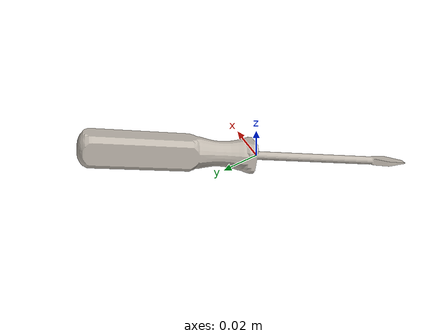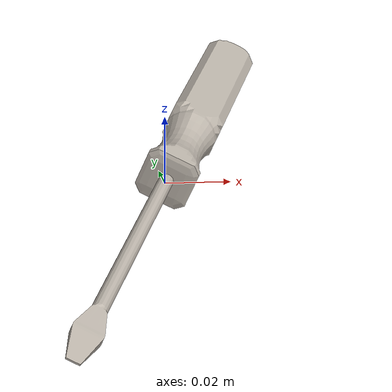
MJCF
<mujoco model="Screwdriver">
  <compiler angle="radian" meshdir="assets" texturedir="assets" autolimits="true"/>
  <default>
    <default class="visual">
      <geom group="2" type="mesh" contype="0" conaffinity="0"/>
    </default>
    <default class="collision">
      <geom group="3" type="mesh" density="500" mass="2" solimp="0.95 0.99 0.001" solref="0.004 1" friction="1.0 0.005 0.0001"/>
    </default>
  </default>
  <asset>
    <texture type="2d" name="ScrewdriverAlbedo" file="ScrewdriverAlbedo.png"/>
    <material name="Material__3" texture="ScrewdriverAlbedo" specular="0.0" shininess="0.02"/>
    <mesh file="Screwdriver.obj" scale="0.02 0.02 0.02"/>
    <mesh file="Screwdriver_collision_0.obj" scale="0.02 0.02 0.02"/>
    <mesh file="Screwdriver_collision_1.obj" scale="0.02 0.02 0.02"/>
    <mesh file="Screwdriver_collision_2.obj" scale="0.02 0.02 0.02"/>
  </asset>
  <worldbody>
    <body name="Screwdriver">
      <geom material="Material__3" mesh="Screwdriver" class="visual"/>
      <geom mesh="Screwdriver_collision_0" rgba="0.7906275948740719 0.8116706093813627 0.8251413874002452 1" class="collision"/>
      <geom mesh="Screwdriver_collision_1" rgba="0.8761779916356105 0.2523546750454314 0.5838753761747055 1" class="collision"/>
      <geom mesh="Screwdriver_collision_2" rgba="0.10748632019043103 0.9145433556958664 0.6411310852665876 1" class="collision"/>
    </body>
  </worldbody>
</mujoco>
